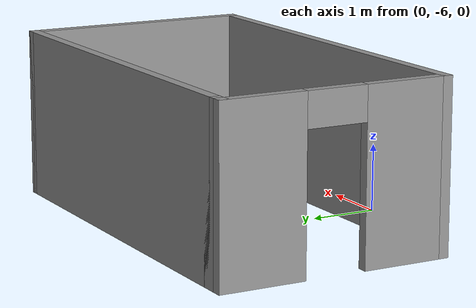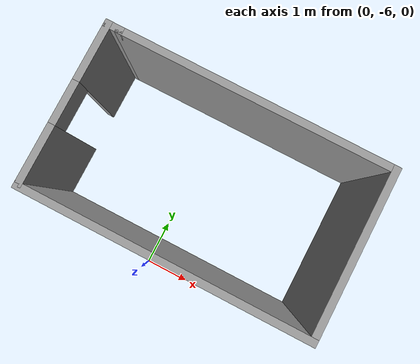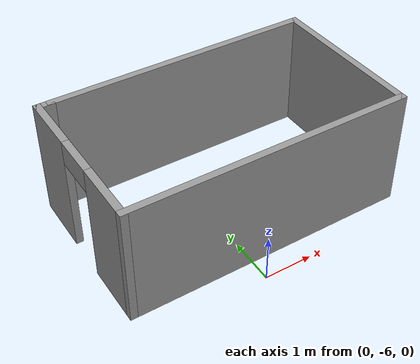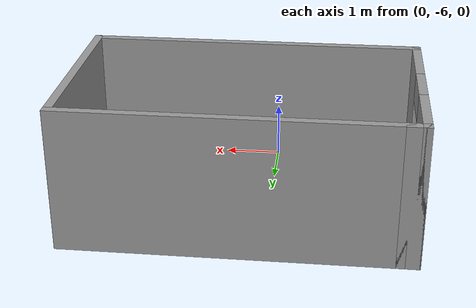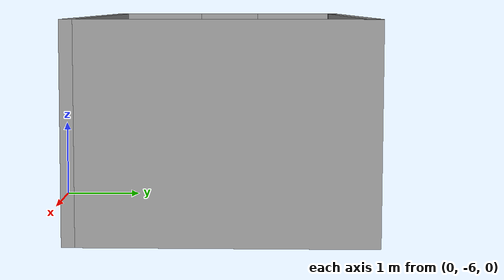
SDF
<?xml version='1.0'?>
<sdf version='1.6'>
  <model name='room'>
    <pose frame=''>0.425 -3.785 0 0 -0 0</pose>
    <link name='Wall_0'>
      <collision name='Wall_0_Collision'>
        <geometry>
          <box>
            <size>5.75 0.15 2.5</size>
          </box>
        </geometry>
        <pose frame=''>0 0 1.25 0 -0 0</pose>
      </collision>
      <visual name='Wall_0_Visual'>
        <pose frame=''>0 0 1.25 0 -0 0</pose>
        <geometry>
          <box>
            <size>5.75 0.15 2.5</size>
          </box>
        </geometry>
        <material>
          <script>
            <uri>file://media/materials/scripts/gazebo.material</uri>
            <name>Gazebo/Grey</name>
          </script>
          <ambient>1 1 1 1</ambient>
        </material>
        <meta>
          <layer>0</layer>
        </meta>
      </visual>
      <pose frame=''>0.125 1.675 0 0 -0 0</pose>
    </link>
    <link name='Wall_1'>
      <collision name='Wall_1_Collision'>
        <geometry>
          <box>
            <size>3.5 0.15 2.5</size>
          </box>
        </geometry>
        <pose frame=''>0 0 1.25 0 -0 0</pose>
      </collision>
      <visual name='Wall_1_Visual'>
        <pose frame=''>0 0 1.25 0 -0 0</pose>
        <geometry>
          <box>
            <size>3.5 0.15 2.5</size>
          </box>
        </geometry>
        <material>
          <script>
            <uri>file://media/materials/scripts/gazebo.material</uri>
            <name>Gazebo/Grey</name>
          </script>
          <ambient>1 1 1 1</ambient>
        </material>
        <meta>
          <layer>0</layer>
        </meta>
      </visual>
      <pose frame=''>2.925 0 0 0 -0 -1.5708</pose>
    </link>
    <link name='Wall_2'>
      <collision name='Wall_2_Collision'>
        <geometry>
          <box>
            <size>6 0.15 2.5</size>
          </box>
        </geometry>
        <pose frame=''>0 0 1.25 0 -0 0</pose>
      </collision>
      <visual name='Wall_2_Visual'>
        <pose frame=''>0 0 1.25 0 -0 0</pose>
        <geometry>
          <box>
            <size>6 0.15 2.5</size>
          </box>
        </geometry>
        <material>
          <script>
            <uri>file://media/materials/scripts/gazebo.material</uri>
            <name>Gazebo/Grey</name>
          </script>
          <ambient>1 1 1 1</ambient>
        </material>
        <meta>
          <layer>0</layer>
        </meta>
      </visual>
      <pose frame=''>0 -1.675 0 0 -0 3.14159</pose>
    </link>
    <link name='Wall_3'>
      <pose frame=''>-2.925 0 0 0 -0 1.5708</pose>
      <visual name='Wall_3_Visual_0'>
        <pose frame=''>-1.0875 0 1.25 0 -0 0</pose>
        <geometry>
          <box>
            <size>1.325 0.15 2.5</size>
          </box>
        </geometry>
        <material>
          <script>
            <uri>file://media/materials/scripts/gazebo.material</uri>
            <name>Gazebo/Grey</name>
          </script>
          <ambient>1 1 1 1</ambient>
        </material>
        <meta>
          <layer>0</layer>
        </meta>
      </visual>
      <collision name='Wall_3_Collision_0'>
        <geometry>
          <box>
            <size>1.325 0.15 2.5</size>
          </box>
        </geometry>
        <pose frame=''>-1.0875 0 1.25 0 -0 0</pose>
      </collision>
      <visual name='Wall_3_Visual_1'>
        <pose frame=''>1.1125 0 1.25 0 -0 0</pose>
        <geometry>
          <box>
            <size>1.275 0.15 2.5</size>
          </box>
        </geometry>
        <material>
          <script>
            <uri>file://media/materials/scripts/gazebo.material</uri>
            <name>Gazebo/Grey</name>
          </script>
          <ambient>1 1 1 1</ambient>
        </material>
        <meta>
          <layer>0</layer>
        </meta>
      </visual>
      <collision name='Wall_3_Collision_1'>
        <geometry>
          <box>
            <size>1.275 0.15 2.5</size>
          </box>
        </geometry>
        <pose frame=''>1.1125 0 1.25 0 -0 0</pose>
      </collision>
      <visual name='Wall_3_Visual_2'>
        <pose frame=''>0.025 0 2.25 0 -0 0</pose>
        <geometry>
          <box>
            <size>0.9 0.15 0.5</size>
          </box>
        </geometry>
        <material>
          <script>
            <uri>file://media/materials/scripts/gazebo.material</uri>
            <name>Gazebo/Grey</name>
          </script>
          <ambient>1 1 1 1</ambient>
        </material>
        <meta>
          <layer>0</layer>
        </meta>
      </visual>
      <collision name='Wall_3_Collision_2'>
        <geometry>
          <box>
            <size>0.9 0.15 0.5</size>
          </box>
        </geometry>
        <pose frame=''>0.025 0 2.25 0 -0 0</pose>
      </collision>
    </link>
    <link name='Wall_4'>
      <collision name='Wall_4_Collision'>
        <geometry>
          <box>
            <size>0.15 0.15 2.5</size>
          </box>
        </geometry>
        <pose frame=''>0 0 1.25 0 -0 0</pose>
      </collision>
      <visual name='Wall_4_Visual'>
        <pose frame=''>0 0 1.25 0 -0 0</pose>
        <geometry>
          <box>
            <size>0.15 0.15 2.5</size>
          </box>
        </geometry>
        <material>
          <script>
            <uri>file://media/materials/scripts/gazebo.material</uri>
            <name>Gazebo/Grey</name>
          </script>
          <ambient>1 1 1 1</ambient>
        </material>
        <meta>
          <layer>0</layer>
        </meta>
      </visual>
      <pose frame=''>-2.925 1.675 0 0 -0 0</pose>
    </link>
    <link name='Wall_5'>
      <collision name='Wall_5_Collision'>
        <geometry>
          <box>
            <size>0.4 0.15 2.5</size>
          </box>
        </geometry>
        <pose frame=''>0 0 1.25 0 -0 0</pose>
      </collision>
      <visual name='Wall_5_Visual'>
        <pose frame=''>0 0 1.25 0 -0 0</pose>
        <geometry>
          <box>
            <size>0.4 0.15 2.5</size>
          </box>
        </geometry>
        <material>
          <script>
            <uri>file://media/materials/scripts/gazebo.material</uri>
            <name>Gazebo/Grey</name>
          </script>
          <ambient>1 1 1 1</ambient>
        </material>
        <meta>
          <layer>0</layer>
        </meta>
      </visual>
      <pose frame=''>-2.8 1.675 0 0 -0 0</pose>
    </link>
    <static>1</static>
  </model>
</sdf>
